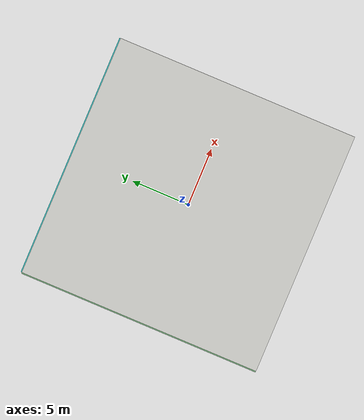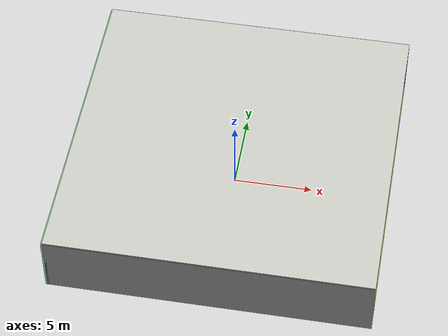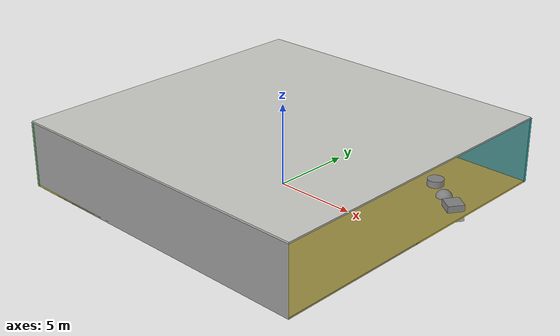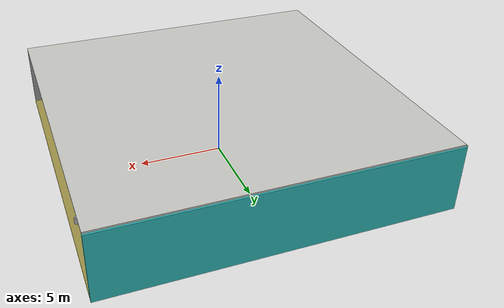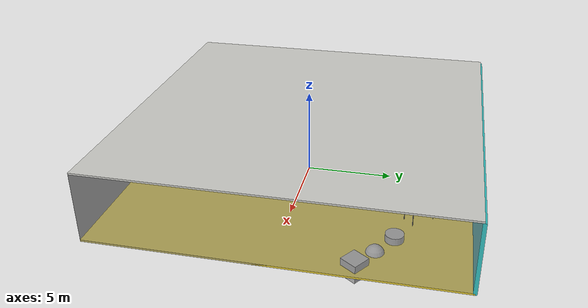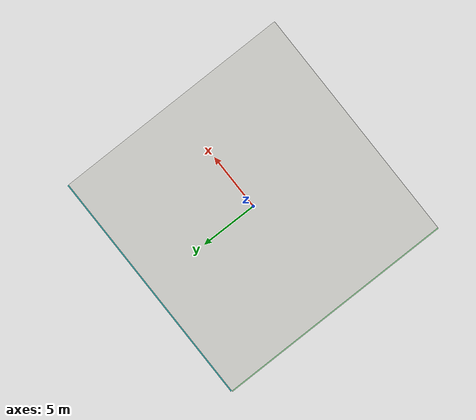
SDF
<sdf version="1.4">
 <world name="default">
  <physics type="ode">
   <max_step_size>0.001</max_step_size>
   <real_time_factor>1</real_time_factor>
   <real_time_update_rate>1000</real_time_update_rate>
   <gravity>0 0 -9.8</gravity>
  </physics>
  <scene><ambient>0.4 0.4 0.4 1</ambient><background>0.7 0.7 0.7 1</background><shadows>1</shadows></scene>
  <model name="Surrounding">
   <static>1</static>
   <link name="Ceiling">
    <collision name="Ceiling_Collision"><geometry><box><size>20 20 0.1</size></box></geometry></collision>
    <visual name="Ceiling_Visual">
     <geometry><box><size>20 20 0.1</size></box></geometry>
     <material>
      <script><uri>file://media/materials/scripts/gazebo.material</uri><name>Gazebo/CeilingTiled</name></script>
     </material>
    </visual>
    <pose>0 0 4.05 0 0 0</pose>
   </link>
   <link name="Wall_South">
    <collision name="Wall_South_Collision">
     <geometry><box><size>20 0 4</size></box></geometry>
     <pose>0 0 2 0 -0 0</pose>
    </collision>
    <visual name="Wall_South_Visual">
     <pose>0 0 2 0 -0 0</pose>
     <geometry><box><size>20 0 4</size></box></geometry>
     <material>
      <script><uri>file://media/materials/scripts/gazebo.material</uri><name>Gazebo/Grey</name></script>
     </material>
    </visual>
    <velocity_decay><linear>0</linear><angular>0</angular></velocity_decay>
    <pose>0 -10 0 0 -0 0</pose>
   </link>
   <link name="Wall_East">
    <collision name="Wall_21_Collision">
     <geometry><box><size>20 0 4</size></box></geometry>
     <pose>0 0 2 0 -0 0</pose>
    </collision>
    <visual name="Wall_21_Visual">
     <pose>0 0 2 0 -0 0</pose>
     <geometry><box><size>20 0 4</size></box></geometry>
     <material>
      <script><uri>file://media/materials/scripts/gazebo.material</uri><name>Gazebo/GreyTransparent</name></script>
     </material>
    </visual>
    <velocity_decay><linear>0</linear><angular>0</angular></velocity_decay>
    <pose>10 0 0 0 -0 1.5708</pose>
   </link>
   <link name="Wall_North">
    <collision name="Wall_22_Collision">
     <geometry><box><size>20 0.2 4</size></box></geometry>
     <pose>0 0 2 0 -0 0</pose>
    </collision>
    <visual name="Wall_22_Visual">
     <pose>0 0 2 0 -0 0</pose>
     <geometry><box><size>20 0.2 4</size></box></geometry>
     <material>
      <script><uri>file://media/materials/scripts/gazebo.material</uri><name>Gazebo/Turquoise</name></script>
     </material>
    </visual>
    <velocity_decay><linear>0</linear><angular>0</angular></velocity_decay>
    <pose>0 10 0 0 -0 0</pose>
   </link>
   <link name="Wall_West">
    <collision name="Wall_23_Collision">
     <geometry><box><size>20 0.2 4</size></box></geometry>
     <pose>0 0 2 0 -0 0</pose>
    </collision>
    <visual name="Wall_23_Visual">
     <pose>0 0 2 0 -0 0</pose>
     <geometry><box><size>20 0.2 4</size></box></geometry>
     <material>
      <script><uri>file://media/materials/scripts/gazebo.material</uri><name>Gazebo/GreenTransparent</name></script>
     </material>
    </visual>
    <velocity_decay><linear>0</linear><angular>0</angular></velocity_decay>
    <pose>-10 0 0 0 0 -1.5708</pose>
   </link>
   <link name="Ground_link">
    <collision name="collision">
     <pose>0 0 .05 0 -0 0</pose>
     <geometry><box><size>20 20 0.1</size></box></geometry>
    </collision>
    <visual name="visual">
     <pose>0 0 .05 0 -0 0</pose>
     <geometry><box><size>20 20 0.1</size></box></geometry>
     <material>
      <script><uri>file://media/materials/scripts/gazebo.material</uri><name>Gazebo/ZincYellow</name></script>
     </material>
    </visual>
   </link>
   <static>1</static>
  </model>
  <spherical_coordinates>
   <surface_model>EARTH_WGS84</surface_model>
   <latitude_deg>0</latitude_deg>
   <longitude_deg>0</longitude_deg>
   <elevation>0</elevation>
   <heading_deg>0</heading_deg>
  </spherical_coordinates>
  <light name="lightball_0" type="diffuse">
   <diffuse>0.8 0.8 0.8 1</diffuse>
   <specular>0.2 0.2 0.2 1</specular>
   <attenuation>
    <range>100</range>
    <constant>0.7</constant>
    <linear>0.01</linear>
    <quadratic>0.001</quadratic>
   </attenuation>
   <direction>-0.5 0.1 -0.9</direction>
   <pose>9.16666926929 -5.35416021212 3.13981018717 0 0 0</pose>
  </light>
  <light name="lightball_1" type="diffuse">
   <diffuse>0.8 0.8 0.8 1</diffuse>
   <specular>0.2 0.2 0.2 1</specular>
   <attenuation>
    <range>100</range>
    <constant>0.7</constant>
    <linear>0.01</linear>
    <quadratic>0.001</quadratic>
   </attenuation>
   <direction>-0.5 0.1 -0.9</direction>
   <pose>3.9746633338 2.00540912467 2.28614225241 0 0 0</pose>
  </light>
  <light name="lightball_2" type="diffuse">
   <diffuse>0.8 0.8 0.8 1</diffuse>
   <specular>0.2 0.2 0.2 1</specular>
   <attenuation>
    <range>100</range>
    <constant>0.7</constant>
    <linear>0.01</linear>
    <quadratic>0.001</quadratic>
   </attenuation>
   <direction>-0.5 0.1 -0.9</direction>
   <pose>-1.84667497202 0.431724612418 2.35750092351 0 0 0</pose>
  </light>
  <light name="lightball_3" type="diffuse">
   <diffuse>0.8 0.8 0.8 1</diffuse>
   <specular>0.2 0.2 0.2 1</specular>
   <attenuation>
    <range>100</range>
    <constant>0.7</constant>
    <linear>0.01</linear>
    <quadratic>0.001</quadratic>
   </attenuation>
   <direction>-0.5 0.1 -0.9</direction>
   <pose>-2.72731986987 -0.695000743976 2.66088819226 0 0 0</pose>
  </light>
  <light name="lightball_4" type="diffuse">
   <diffuse>0.8 0.8 0.8 1</diffuse>
   <specular>0.2 0.2 0.2 1</specular>
   <attenuation>
    <range>100</range>
    <constant>0.7</constant>
    <linear>0.01</linear>
    <quadratic>0.001</quadratic>
   </attenuation>
   <direction>-0.5 0.1 -0.9</direction>
   <pose>-0.924131508193 6.4965334121 0.965123118767 0 0 0</pose>
  </light>
  <light name="lightball_5" type="diffuse">
   <diffuse>0.8 0.8 0.8 1</diffuse>
   <specular>0.2 0.2 0.2 1</specular>
   <attenuation>
    <range>100</range>
    <constant>0.7</constant>
    <linear>0.01</linear>
    <quadratic>0.001</quadratic>
   </attenuation>
   <direction>-0.5 0.1 -0.9</direction>
   <pose>2.30700194383 -2.58461412302 1.19508831001 0 0 0</pose>
  </light>
  <light name="lightball_6" type="diffuse">
   <diffuse>0.8 0.8 0.8 1</diffuse>
   <specular>0.2 0.2 0.2 1</specular>
   <attenuation>
    <range>100</range>
    <constant>0.7</constant>
    <linear>0.01</linear>
    <quadratic>0.001</quadratic>
   </attenuation>
   <direction>-0.5 0.1 -0.9</direction>
   <pose>6.00586514578 2.96306449824 1.14251866773 0 0 0</pose>
  </light>
  <light name="lightball_7" type="diffuse">
   <diffuse>0.8 0.8 0.8 1</diffuse>
   <specular>0.2 0.2 0.2 1</specular>
   <attenuation>
    <range>100</range>
    <constant>0.7</constant>
    <linear>0.01</linear>
    <quadratic>0.001</quadratic>
   </attenuation>
   <direction>-0.5 0.1 -0.9</direction>
   <pose>-3.48573725118 -9.25690231087 0.641755153399 0 0 0</pose>
  </light>
  <light name="lightball_8" type="diffuse">
   <diffuse>0.8 0.8 0.8 1</diffuse>
   <specular>0.2 0.2 0.2 1</specular>
   <attenuation>
    <range>100</range>
    <constant>0.7</constant>
    <linear>0.01</linear>
    <quadratic>0.001</quadratic>
   </attenuation>
   <direction>-0.5 0.1 -0.9</direction>
   <pose>-4.82882719073 -7.90628248797 1.03744703426 0 0 0</pose>
  </light>
  <light name="lightball_9" type="diffuse">
   <diffuse>0.8 0.8 0.8 1</diffuse>
   <specular>0.2 0.2 0.2 1</specular>
   <attenuation>
    <range>100</range>
    <constant>0.7</constant>
    <linear>0.01</linear>
    <quadratic>0.001</quadratic>
   </attenuation>
   <direction>-0.5 0.1 -0.9</direction>
   <pose>-1.93882962108 8.50997812085 2.67384914184 0 0 0</pose>
  </light>
  <light name="lightball_10" type="diffuse">
   <diffuse>0.8 0.8 0.8 1</diffuse>
   <specular>0.2 0.2 0.2 1</specular>
   <attenuation>
    <range>100</range>
    <constant>0.7</constant>
    <linear>0.01</linear>
    <quadratic>0.001</quadratic>
   </attenuation>
   <direction>-0.5 0.1 -0.9</direction>
   <pose>-8.24480687955 -6.28339501875 2.77276296438 0 0 0</pose>
  </light>
  <light name="lightball_11" type="diffuse">
   <diffuse>0.8 0.8 0.8 1</diffuse>
   <specular>0.2 0.2 0.2 1</specular>
   <attenuation>
    <range>100</range>
    <constant>0.7</constant>
    <linear>0.01</linear>
    <quadratic>0.001</quadratic>
   </attenuation>
   <direction>-0.5 0.1 -0.9</direction>
   <pose>6.6549500036 3.74289471216 3.07929628965 0 0 0</pose>
  </light>
  <include><uri>model://table</uri><pose>0.966253010663 7.14202557296 0 0 0 2.80609584195</pose></include>
  <include>
   <uri>model://construction_cone</uri>
   <pose>3.83843266443 -1.23720290886 0 0 0 1.99540689589</pose>
  </include>
  <include><uri>model://table</uri><pose>4.37278490949 7.00703885656 0 0 0 2.28161898867</pose></include>
  <include>
   <uri>model://textured_shapes</uri>
   <pose>7.82302256747 5.06564034147 0 0 0 0.967282160738</pose>
  </include>
 </world>
</sdf>

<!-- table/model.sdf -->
<sdf version="1.5">
  <model name="table">
    <static>true</static>
    <link name="link">
      <collision name="surface">
        <pose>0 0 1.0 0 0 0</pose>
        <geometry>
          <box>
            <size>1.5 0.8 0.03</size>
          </box>
        </geometry>
        <surface>
          <friction>
            <ode>
              <mu>0.6</mu>
              <mu2>0.6</mu2>
            </ode>
          </friction>
        </surface>
      </collision>
      <visual name="visual1">
        <pose>0 0 1.0 0 0 0</pose>
        <geometry>
          <box>
            <size>1.5 0.8 0.03</size>
          </box>
        </geometry>
        <material>
          <script>
            <uri>model://media/materials/scripts/gazebo.material</uri>
            <name>Gazebo/Wood</name>
          </script>
        </material>
      </visual>
      <collision name="front_left_leg">
        <pose>0.68 0.38 0.5 0 0 0</pose>
        <geometry>
          <cylinder>
            <radius>0.02</radius>
            <length>1.0</length>
          </cylinder>
        </geometry>
      </collision>
      <visual name="front_left_leg">
        <pose>0.68 0.38 0.5 0 0 0</pose>
        <geometry>
          <cylinder>
            <radius>0.02</radius>
            <length>1.0</length>
          </cylinder>
        </geometry>
        <material>
          <script>
            <uri>model://media/materials/scripts/gazebo.material</uri>
            <name>Gazebo/Grey</name>
          </script>
        </material>
      </visual>
      <collision name="front_right_leg">
        <pose>0.68 -0.38 0.5 0 0 0</pose>
        <geometry>
          <cylinder>
            <radius>0.02</radius>
            <length>1.0</length>
          </cylinder>
        </geometry>
      </collision>
      <visual name="front_right_leg">
        <pose>0.68 -0.38 0.5 0 0 0</pose>
        <geometry>
          <cylinder>
            <radius>0.02</radius>
            <length>1.0</length>
          </cylinder>
        </geometry>
        <material>
          <script>
            <uri>model://media/materials/scripts/gazebo.material</uri>
            <name>Gazebo/Grey</name>
          </script>
        </material>
      </visual>
      <collision name="back_right_leg">
        <pose>-0.68 -0.38 0.5 0 0 0</pose>
        <geometry>
          <cylinder>
            <radius>0.02</radius>
            <length>1.0</length>
          </cylinder>
        </geometry>
      </collision>
      <visual name="back_right_leg">
        <pose>-0.68 -0.38 0.5 0 0 0</pose>
        <geometry>
          <cylinder>
            <radius>0.02</radius>
            <length>1.0</length>
          </cylinder>
        </geometry>
        <material>
          <script>
            <uri>model://media/materials/scripts/gazebo.material</uri>
            <name>Gazebo/Grey</name>
          </script>
        </material>
      </visual>
      <collision name="back_left_leg">
        <pose>-0.68 0.38 0.5 0 0 0</pose>
        <geometry>
          <cylinder>
            <radius>0.02</radius>
            <length>1.0</length>
          </cylinder>
        </geometry>
      </collision>
      <visual name="back_left_leg">
        <pose>-0.68 0.38 0.5 0 0 0</pose>
        <geometry>
          <cylinder>
            <radius>0.02</radius>
            <length>1.0</length>
          </cylinder>
        </geometry>
        <material>
          <script>
            <uri>model://media/materials/scripts/gazebo.material</uri>
            <name>Gazebo/Grey</name>
          </script>
        </material>
      </visual>
    </link>
  </model>
</sdf>

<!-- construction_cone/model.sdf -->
<sdf version="1.5">
  <model name="Construction Cone">
    <link name="link">
      <collision name="collision">
        <geometry>
          <mesh>
            <scale>10 10 10</scale>
            <uri>file://isr-testbed/construction_cone/meshes/construction_cone.dae</uri>
          </mesh>
        </geometry>
      </collision>
      <visual name="visual">
        <geometry>
          <mesh>
            <scale>10 10 10</scale>
            <uri>file://isr-testbed/construction_cone/meshes/construction_cone.dae</uri>
          </mesh>
        </geometry>
      </visual>
    </link>
  </model>
</sdf>

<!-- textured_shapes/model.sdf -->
<sdf version="1.6">
  <model name="textured_shapes">
    <pose>0 0 0.5 0 0 0</pose>
    <link name="box">
      <pose>0 -1.5 0 0 0 0</pose>
      <collision name="collision">
        <geometry>
          <box>
            <size>1 1 1</size>
          </box>
        </geometry>
      </collision>
      <visual name="visual">
        <geometry>
          <box>
            <size>1 1 1</size>
          </box>
        </geometry>
        <material>
          <script>
            <uri>model://../model_source/models/textured_shapes/materials/scripts</uri>
            <uri>model://../model_source/models/textured_shapes/materials/textures</uri>
            <name>TexturedShape/Squares</name>
          </script>
        </material>
      </visual>
    </link>
    <link name="sphere">
      <collision name="collision">
        <geometry>
          <sphere>
            <radius>0.5</radius>
          </sphere>
        </geometry>
      </collision>
      <visual name="visual">
        <geometry>
          <sphere>
            <radius>0.5</radius>
          </sphere>
        </geometry>
        <material>
          <script>
            <uri>model://../model_source/models/textured_shapes/materials/scripts</uri>
            <uri>model://../model_source/models/textured_shapes/materials/textures</uri>
            <name>TexturedShape/Squares</name>
          </script>
        </material>
      </visual>
    </link>
    <link name="cylinder">
      <pose>0 1.5 0 0 0 0</pose>
      <collision name="collision">
        <geometry>
          <cylinder>
            <radius>0.5</radius>
            <length>1</length>
          </cylinder>
        </geometry>
      </collision>
      <visual name="visual">
        <geometry>
          <cylinder>
            <radius>0.5</radius>
            <length>1</length>
          </cylinder>
        </geometry>
        <material>
          <script>
            <uri>model://../model_source/models/textured_shapes/materials/scripts</uri>
            <uri>model://../model_source/models/textured_shapes/materials/textures</uri>
            <name>TexturedShape/Squares</name>
          </script>
        </material>
      </visual>
    </link>
  </model>
</sdf>
